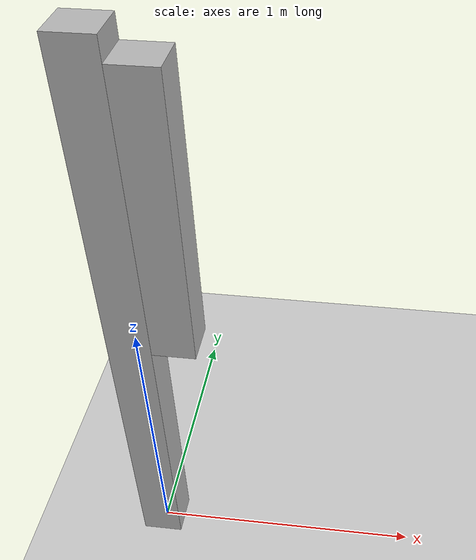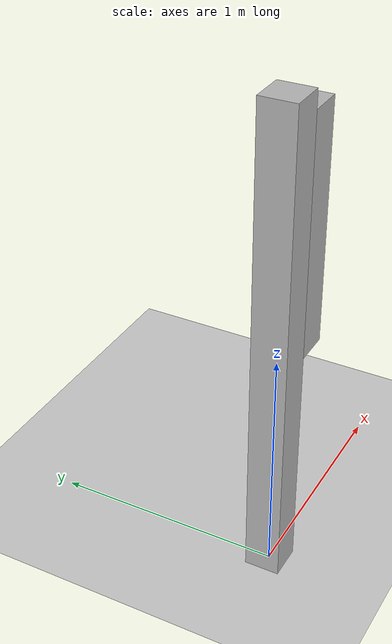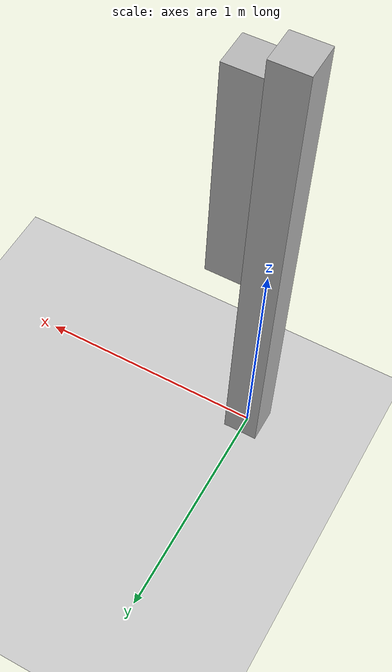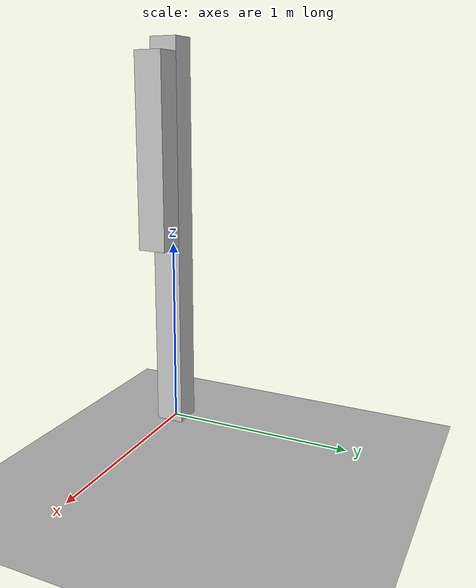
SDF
<?xml version="1.0"?>

<sdf version="1.7">
    <world name="tutorial_controlboard">
        <light type="directional" name="sun">
            <cast_shadows>true</cast_shadows>
            <pose>0 0 10 0 0 0</pose>
            <diffuse>0.8 0.8 0.8 1</diffuse>
            <specular>0.2 0.2 0.2 1</specular>
            <attenuation>
                <range>1000</range>
                <constant>0.9</constant>
                <linear>0.01</linear>
                <quadratic>0.001</quadratic>
            </attenuation>
            <direction>-0.5 0.1 -0.9</direction>
        </light>

        <model name="ground_plane">
            <static>true</static>
            <link name="link">
                <collision name="collision">
                    <geometry>
                        <plane>
                            <normal>0 0 1</normal>
                            <size>100 100</size>
                        </plane>
                    </geometry>
                </collision>
                <visual name="visual">
                    <geometry>
                        <plane>
                            <normal>0 0 1</normal>
                            <size>100 100</size>
                        </plane>
                    </geometry>
                    <material>
                        <ambient>0.8 0.8 0.8 1</ambient>
                        <diffuse>0.8 0.8 0.8 1</diffuse>
                        <specular>0.8 0.8 0.8 1</specular>
                    </material>
                </visual>
            </link>
        </model>

        <model name="single_pendulum">
            <joint name="fixed_base" type="fixed">
                <parent>world</parent>
                <child>base_link</child>
            </joint>
            <link name='base_link'>
                <inertial>
                    <pose>0 0 0 0 0 0</pose>
                    <mass>100</mass>
                    <inertia>
                        <ixx>1</ixx>
                        <ixy>0</ixy>
                        <ixz>0</ixz>
                        <iyy>1</iyy>
                        <iyz>0</iyz>
                        <izz>1</izz>
                    </inertia>
                </inertial>
                <collision name='base_link_fixed_joint_lump__base_collision'>
                    <pose>0 0 1 0 0 0</pose>
                    <geometry>
                        <box>
                            <size>0.15 0.15 2.15</size>
                        </box>
                    </geometry>
                </collision>
                <visual name='base_link_fixed_joint_lump__base_visual'>
                    <pose>0 0 1 0 0 0</pose>
                    <geometry>
                        <box>
                            <size>0.15 0.15 2.15</size>
                        </box>
                    </geometry>
                </visual>
            </link>
            <link name='upper_link'>
                <pose>0.15 0 1.5 -3.14159265359 0 0</pose>
                <self_collide>0</self_collide>
                <inertial>
                    <pose>0 0 0 0 0 0</pose>
                    <mass>1</mass>
                    <inertia>
                        <ixx>0.0852</ixx>
                        <ixy>0</ixy>
                        <ixz>0</ixz>
                        <iyy>0.0852</iyy>
                        <iyz>0</iyz>
                        <izz>0.0037</izz>
                    </inertia>
                </inertial>
                <collision name='upper_link_collision'>
                    <pose>0 0 0 0 0 0</pose>
                    <geometry>
                        <box>
                            <size>0.15 0.15 1.0</size>
                        </box>
                    </geometry>
                </collision>
                <visual name='upper_link_visual'>
                    <pose>0 0 0 0 0 0</pose>
                    <geometry>
                        <box>
                            <size>0.15 0.15 1.0</size>
                        </box>
                    </geometry>
                </visual>
            </link>
            <frame name='arbitrary_frame' attached_to='__model__'>
                <pose>0 0 0 0 0 1.570796</pose>
            </frame>
            <joint name='upper_joint' type='revolute'>
                <!-- Joint axis pose relative to child link -->
                <pose relative_to='arbitrary_frame'>0 -0.15 2.0 0 0 0</pose>
                <parent>base_link</parent>
                <child>upper_link</child>
                <axis>
                    <xyz>0 -1 0</xyz>
                    <limit>
                        <effort>100</effort>
                        <velocity>100</velocity>
                    </limit>
                    <dynamics>
                        <damping>0.0</damping>
                        <spring_reference>0</spring_reference>
                        <spring_stiffness>0.0</spring_stiffness>
                    </dynamics>
                </axis>
            </joint>
            <plugin name="gzyarp::ControlBoard" filename="gz-sim-yarp-controlboard-system">
                <yarpConfigurationFile>
                    model://conf/gazebo_controlboard.ini
                </yarpConfigurationFile>
                <initialConfiguration>0.0</initialConfiguration>
            </plugin>
        </model>
    </world>
</sdf>
